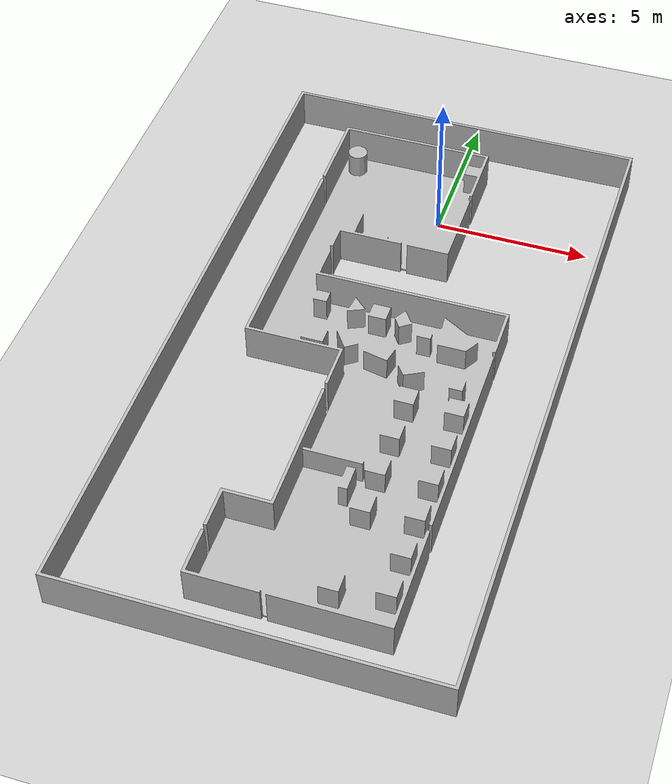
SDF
<sdf version="1.8">
 <world name="default">
  <plugin filename="gz-sim-physics-system" name="gz::sim::systems::Physics"/>
  <plugin filename="gz-sim-user-commands-system" name="gz::sim::systems::UserCommands"/>
  <plugin filename="gz-sim-scene-broadcaster-system" name="gz::sim::systems::SceneBroadcaster"/>
  <plugin filename="gz-sim-sensors-system" name="gz::sim::systems::Sensors">
   <render_engine>ogre2</render_engine>
  </plugin>
  <light name="sun" type="directional">
   <pose>0 0 10 0 -0 0</pose>
   <diffuse>0.8 0.8 0.8 1</diffuse>
   <specular>0.2 0.2 0.2 1</specular>
   <attenuation>
    <range>1000</range>
    <constant>0.9</constant>
    <linear>0.01</linear>
    <quadratic>0.001</quadratic>
   </attenuation>
   <direction>-0.5 0.1 -0.9</direction>
   <spot><inner_angle>0</inner_angle><outer_angle>0</outer_angle><falloff>0</falloff></spot>
  </light>
  <model name="ground_plane">
   <static>1</static>
   <link name="link">
    <collision name="collision">
     <geometry><plane><normal>0 0 1</normal><size>100 100</size></plane></geometry>
     <surface>
      <contact><collide_bitmask>65535</collide_bitmask></contact>
      <friction><ode><mu>100</mu><mu2>50</mu2></ode></friction>
     </surface>
    </collision>
    <visual name="visual">
     <cast_shadows>0</cast_shadows>
     <geometry><plane><normal>0 0 1</normal><size>100 100</size></plane></geometry>
     <material>
      <script><uri>file://media/materials/scripts/gazebo.material</uri><name>Gazebo/Grey</name></script>
     </material>
    </visual>
   </link>
  </model>
  <gravity>0 0 -9.8</gravity>
  <magnetic_field>6e-06 2.3e-05 -4.2e-05</magnetic_field>
  <atmosphere type="adiabatic"/>
  <physics type="ode">
   <max_step_size>0.01</max_step_size>
   <real_time_factor>1</real_time_factor>
   <real_time_update_rate>100</real_time_update_rate>
  </physics>
  <scene><ambient>0.4 0.4 0.4 1</ambient><background>0.7 0.7 0.7 1</background><shadows>0</shadows></scene>
  <spherical_coordinates>
   <surface_model>EARTH_WGS84</surface_model>
   <latitude_deg>0</latitude_deg>
   <longitude_deg>0</longitude_deg>
   <elevation>0</elevation>
   <heading_deg>0</heading_deg>
  </spherical_coordinates>
  <model name="environment_description">
   <static>1</static>
   <link name="base_link">
    <inertial>
     <pose>0.000349 -0.030374 1.10768 0 -0 0</pose>
     <mass>7.39711e+06</mass>
     <inertia>
      <ixx>6.89254e+08</ixx>
      <ixy>6120.55</ixy>
      <ixz>1720.98</ixz>
      <iyy>1.20083e+10</iyy>
      <iyz>26862.2</iyz>
      <izz>1.26764e+10</izz>
     </inertia>
    </inertial>
    <collision name="base_link_collision">
     <geometry>
      <mesh><scale>1 1 1</scale><uri>package://openmover/meshes/environment_description/base_link.STL</uri></mesh>
     </geometry>
    </collision>
    <visual name="base_link_visual">
     <geometry>
      <mesh><scale>1 1 1</scale><uri>package://openmover/meshes/environment_description/base_link.STL</uri></mesh>
     </geometry>
    </visual>
   </link>
   <pose>0 -0 -1.1e-05 0 -0 0</pose>
  </model>
 </world>
</sdf>
